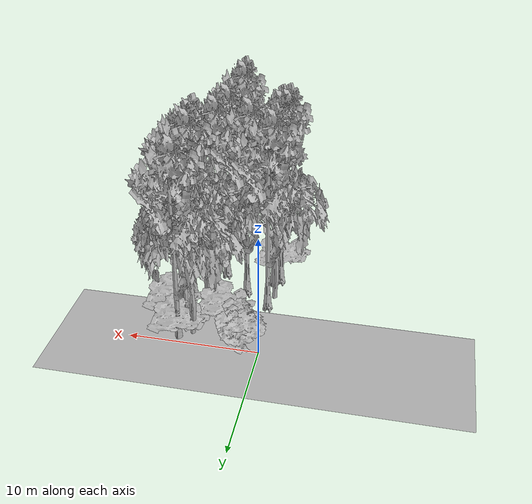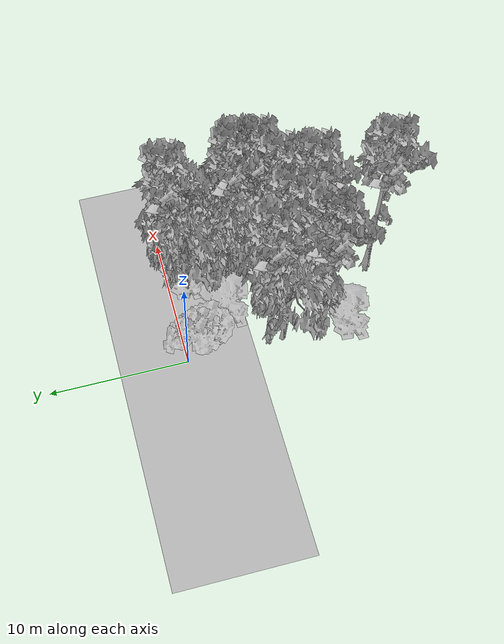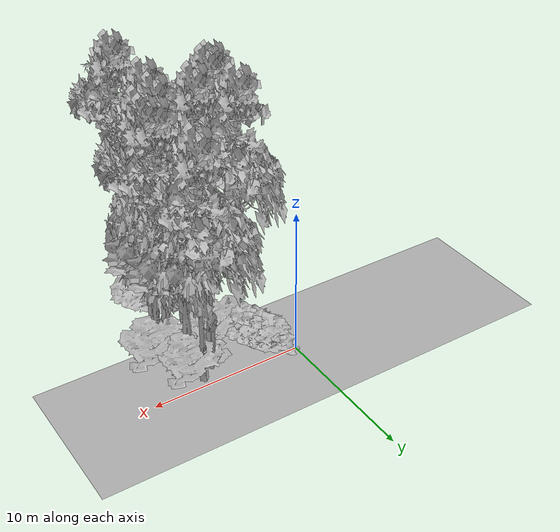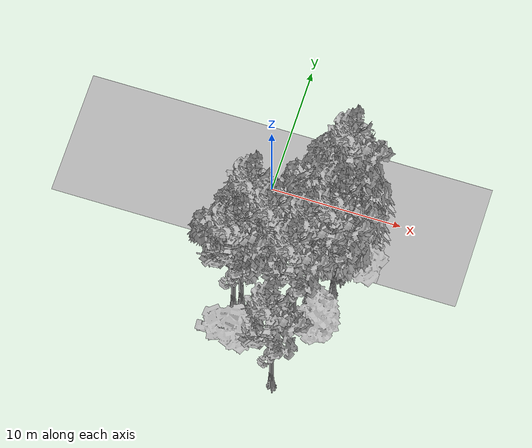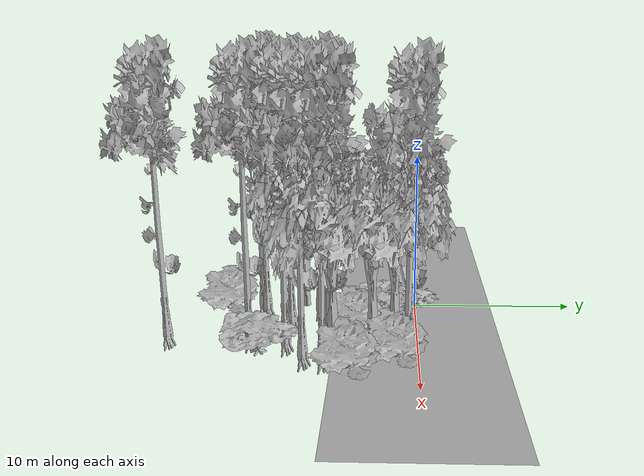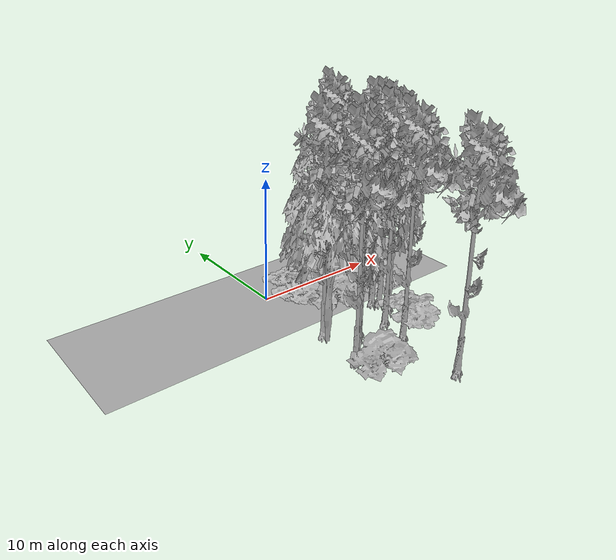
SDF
<sdf version="1.7">
 <world name="default">
  <model name="ground_plane">
   <static>1</static>
   <link name="link">
    <collision name="collision">
     <pose>-50 0 0 0 -0 0</pose>
     <geometry><plane><normal>0 0 1</normal><size>100 100</size></plane></geometry>
     <surface><contact><ode><min_depth>0.01</min_depth><max_vel>0</max_vel></ode></contact></surface>
    </collision>
    <visual name="grass">
     <cast_shadows>0</cast_shadows>
     <geometry>
      <mesh>
       <scale>0.5814285714285714 0.18142857142857144 0.1</scale>
       <uri>file://grass_plane/meshes/grass_plane.dae</uri>
      </mesh>
     </geometry>
    </visual>
   </link>
  </model>
  <model name="Tree 47">
   <static>1</static>
   <pose>5.1906267284999 -7.704405802500441 0 1.57079 -0 0</pose>
   <link name="link">
    <collision name="collision">
     <geometry><mesh><scale>3.5 5 3.5</scale><uri>model://tree_9/meshes/tree_9.obj</uri></mesh></geometry>
    </collision>
    <visual name="visual">
     <geometry><mesh><scale>3.5 5 3.5</scale><uri>model://tree_9/meshes/tree_9.obj</uri></mesh></geometry>
    </visual>
   </link>
  </model>
  <model name="Tree 98">
   <static>1</static>
   <pose>0.6595280109335704 -9.530584026053392 0 1.57079 -0 0</pose>
   <link name="link">
    <collision name="collision">
     <geometry><mesh><scale>3.5 5 3.5</scale><uri>model://tree_9/meshes/tree_9.obj</uri></mesh></geometry>
    </collision>
    <visual name="visual">
     <geometry><mesh><scale>3.5 5 3.5</scale><uri>model://tree_9/meshes/tree_9.obj</uri></mesh></geometry>
    </visual>
   </link>
  </model>
  <model name="Tree 135">
   <static>1</static>
   <pose>6.2471451750112905 -2.5941195589769865 0 1.57079 -0 0</pose>
   <link name="link">
    <collision name="collision">
     <geometry><mesh><scale>3.5 5 3.5</scale><uri>model://tree_2/meshes/tree_2.obj</uri></mesh></geometry>
    </collision>
    <visual name="visual">
     <geometry><mesh><scale>3.5 5 3.5</scale><uri>model://tree_2/meshes/tree_2.obj</uri></mesh></geometry>
    </visual>
   </link>
  </model>
  <model name="Tree 149">
   <static>1</static>
   <pose>1.4003544358813187 -1.0114500751503481 0 1.57079 -0 0</pose>
   <link name="link">
    <collision name="collision">
     <geometry><mesh><scale>4 2.5 4</scale><uri>model://tree_1/meshes/tree_1.obj</uri></mesh></geometry>
    </collision>
    <visual name="visual">
     <geometry><mesh><scale>4 2.5 4</scale><uri>model://tree_1/meshes/tree_1.obj</uri></mesh></geometry>
    </visual>
   </link>
  </model>
  <model name="Tree 172">
   <static>1</static>
   <pose>6.5687089896866055 -1.62217858796296 0 1.57079 -0 0</pose>
   <link name="link">
    <collision name="collision">
     <geometry><mesh><scale>3 2 3</scale><uri>model://tree_3/meshes/tree_3.obj</uri></mesh></geometry>
    </collision>
    <visual name="visual">
     <geometry><mesh><scale>3 2 3</scale><uri>model://tree_3/meshes/tree_3.obj</uri></mesh></geometry>
    </visual>
   </link>
  </model>
  <model name="Tree 184">
   <static>1</static>
   <pose>6.768180602157841 -6.5285065411665855 0 1.57079 -0 0</pose>
   <link name="link">
    <collision name="collision">
     <geometry><mesh><scale>3.5 5 3.5</scale><uri>model://tree_9/meshes/tree_9.obj</uri></mesh></geometry>
    </collision>
    <visual name="visual">
     <geometry><mesh><scale>3.5 5 3.5</scale><uri>model://tree_9/meshes/tree_9.obj</uri></mesh></geometry>
    </visual>
   </link>
  </model>
  <model name="Tree 193">
   <static>1</static>
   <pose>0.5421023043805988 -6.1133744101644325 0 1.57079 -0 0</pose>
   <link name="link">
    <collision name="collision">
     <geometry><mesh><scale>3.5 5 3.5</scale><uri>model://tree_9/meshes/tree_9.obj</uri></mesh></geometry>
    </collision>
    <visual name="visual">
     <geometry><mesh><scale>3.5 5 3.5</scale><uri>model://tree_9/meshes/tree_9.obj</uri></mesh></geometry>
    </visual>
   </link>
  </model>
  <model name="Tree 213">
   <static>1</static>
   <pose>4.777678196851902 -9.896130131199058 0 1.57079 -0 0</pose>
   <link name="link">
    <collision name="collision">
     <geometry><mesh><scale>3.5 5 3.5</scale><uri>model://tree_9/meshes/tree_9.obj</uri></mesh></geometry>
    </collision>
    <visual name="visual">
     <geometry><mesh><scale>3.5 5 3.5</scale><uri>model://tree_9/meshes/tree_9.obj</uri></mesh></geometry>
    </visual>
   </link>
  </model>
  <model name="Tree 216">
   <static>1</static>
   <pose>4.64163036588802 -14.832763353882394 0 1.57079 -0 0</pose>
   <link name="link">
    <collision name="collision">
     <geometry><mesh><scale>3.5 5 3.5</scale><uri>model://tree_9/meshes/tree_9.obj</uri></mesh></geometry>
    </collision>
    <visual name="visual">
     <geometry><mesh><scale>3.5 5 3.5</scale><uri>model://tree_9/meshes/tree_9.obj</uri></mesh></geometry>
    </visual>
   </link>
  </model>
  <model name="Tree 223">
   <static>1</static>
   <pose>6.546876435456284 -4.986735942061159 0 1.57079 -0 0</pose>
   <link name="link">
    <collision name="collision">
     <geometry><mesh><scale>3.5 5 3.5</scale><uri>model://tree_9/meshes/tree_9.obj</uri></mesh></geometry>
    </collision>
    <visual name="visual">
     <geometry><mesh><scale>3.5 5 3.5</scale><uri>model://tree_9/meshes/tree_9.obj</uri></mesh></geometry>
    </visual>
   </link>
  </model>
  <model name="Tree 257">
   <static>1</static>
   <pose>0.4492926558976791 -12.109331527161592 0 1.57079 -0 0</pose>
   <link name="link">
    <collision name="collision">
     <geometry><mesh><scale>3 2 3</scale><uri>model://tree_3/meshes/tree_3.obj</uri></mesh></geometry>
    </collision>
    <visual name="visual">
     <geometry><mesh><scale>3 2 3</scale><uri>model://tree_3/meshes/tree_3.obj</uri></mesh></geometry>
    </visual>
   </link>
  </model>
  <model name="Tree 319">
   <static>1</static>
   <pose>5.149410494980835 -5.141643056125069 0 1.57079 -0 0</pose>
   <link name="link">
    <collision name="collision">
     <geometry><mesh><scale>3.5 5 3.5</scale><uri>model://tree_2/meshes/tree_2.obj</uri></mesh></geometry>
    </collision>
    <visual name="visual">
     <geometry><mesh><scale>3.5 5 3.5</scale><uri>model://tree_2/meshes/tree_2.obj</uri></mesh></geometry>
    </visual>
   </link>
  </model>
  <model name="Tree 324">
   <static>1</static>
   <pose>0.0409320439127967 -7.053191806178133 0 1.57079 -0 0</pose>
   <link name="link">
    <collision name="collision">
     <geometry><mesh><scale>3.5 5 3.5</scale><uri>model://tree_2/meshes/tree_2.obj</uri></mesh></geometry>
    </collision>
    <visual name="visual">
     <geometry><mesh><scale>3.5 5 3.5</scale><uri>model://tree_2/meshes/tree_2.obj</uri></mesh></geometry>
    </visual>
   </link>
  </model>
  <model name="Tree 333">
   <static>1</static>
   <pose>6.3113043749798265 -0.6092743516838741 0 1.57079 -0 0</pose>
   <link name="link">
    <collision name="collision">
     <geometry><mesh><scale>3.5 5 3.5</scale><uri>model://tree_9/meshes/tree_9.obj</uri></mesh></geometry>
    </collision>
    <visual name="visual">
     <geometry><mesh><scale>3.5 5 3.5</scale><uri>model://tree_9/meshes/tree_9.obj</uri></mesh></geometry>
    </visual>
   </link>
  </model>
  <model name="Tree 473">
   <static>1</static>
   <pose>2.5713027298717677 -7.693798580085628 0 1.57079 -0 0</pose>
   <link name="link">
    <collision name="collision">
     <geometry><mesh><scale>3.5 5 3.5</scale><uri>model://tree_9/meshes/tree_9.obj</uri></mesh></geometry>
    </collision>
    <visual name="visual">
     <geometry><mesh><scale>3.5 5 3.5</scale><uri>model://tree_9/meshes/tree_9.obj</uri></mesh></geometry>
    </visual>
   </link>
  </model>
  <model name="Tree 474">
   <static>1</static>
   <pose>5.278443409667318 -1.3570630235511185 0 1.57079 -0 0</pose>
   <link name="link">
    <collision name="collision">
     <geometry><mesh><scale>3.5 5 3.5</scale><uri>model://tree_2/meshes/tree_2.obj</uri></mesh></geometry>
    </collision>
    <visual name="visual">
     <geometry><mesh><scale>3.5 5 3.5</scale><uri>model://tree_2/meshes/tree_2.obj</uri></mesh></geometry>
    </visual>
   </link>
  </model>
  <model name="Tree 482">
   <static>1</static>
   <pose>6.534772256496694 -4.801950092958281 0 1.57079 -0 0</pose>
   <link name="link">
    <collision name="collision">
     <geometry><mesh><scale>3.5 5 3.5</scale><uri>model://tree_2/meshes/tree_2.obj</uri></mesh></geometry>
    </collision>
    <visual name="visual">
     <geometry><mesh><scale>3.5 5 3.5</scale><uri>model://tree_2/meshes/tree_2.obj</uri></mesh></geometry>
    </visual>
   </link>
  </model>
  <model name="Tree 490">
   <static>1</static>
   <pose>3.5674089449627004 -4.041760342303233 0 1.57079 -0 0</pose>
   <link name="link">
    <collision name="collision">
     <geometry><mesh><scale>3 2 3</scale><uri>model://tree_3/meshes/tree_3.obj</uri></mesh></geometry>
    </collision>
    <visual name="visual">
     <geometry><mesh><scale>3 2 3</scale><uri>model://tree_3/meshes/tree_3.obj</uri></mesh></geometry>
    </visual>
   </link>
  </model>
  <model name="Tree 495">
   <static>1</static>
   <pose>1.7961174442017978 -1.7751588265555576 0 1.57079 -0 0</pose>
   <link name="link">
    <collision name="collision">
     <geometry><mesh><scale>4 2.5 4</scale><uri>model://tree_1/meshes/tree_1.obj</uri></mesh></geometry>
    </collision>
    <visual name="visual">
     <geometry><mesh><scale>4 2.5 4</scale><uri>model://tree_1/meshes/tree_1.obj</uri></mesh></geometry>
    </visual>
   </link>
  </model>
  <model name="Tree 499">
   <static>1</static>
   <pose>6.98217468205673 -5.377871033211768 0 1.57079 -0 0</pose>
   <link name="link">
    <collision name="collision">
     <geometry><mesh><scale>3.5 5 3.5</scale><uri>model://tree_9/meshes/tree_9.obj</uri></mesh></geometry>
    </collision>
    <visual name="visual">
     <geometry><mesh><scale>3.5 5 3.5</scale><uri>model://tree_9/meshes/tree_9.obj</uri></mesh></geometry>
    </visual>
   </link>
  </model>
  <model name="Tree 508">
   <static>1</static>
   <pose>0.16574143953488374 -9.871979133906017 0 1.57079 -0 0</pose>
   <link name="link">
    <collision name="collision">
     <geometry><mesh><scale>3.5 5 3.5</scale><uri>model://tree_9/meshes/tree_9.obj</uri></mesh></geometry>
    </collision>
    <visual name="visual">
     <geometry><mesh><scale>3.5 5 3.5</scale><uri>model://tree_9/meshes/tree_9.obj</uri></mesh></geometry>
    </visual>
   </link>
  </model>
  <model name="Tree 515">
   <static>1</static>
   <pose>7.809978805426532 -4.234955430061577 0 1.57079 -0 0</pose>
   <link name="link">
    <collision name="collision">
     <geometry><mesh><scale>3 2 3</scale><uri>model://tree_3/meshes/tree_3.obj</uri></mesh></geometry>
    </collision>
    <visual name="visual">
     <geometry><mesh><scale>3 2 3</scale><uri>model://tree_3/meshes/tree_3.obj</uri></mesh></geometry>
    </visual>
   </link>
  </model>
  <model name="Tree 532">
   <static>1</static>
   <pose>6.132852439598551 -9.161929613608596 0 1.57079 -0 0</pose>
   <link name="link">
    <collision name="collision">
     <geometry><mesh><scale>4 2.5 4</scale><uri>model://tree_1/meshes/tree_1.obj</uri></mesh></geometry>
    </collision>
    <visual name="visual">
     <geometry><mesh><scale>4 2.5 4</scale><uri>model://tree_1/meshes/tree_1.obj</uri></mesh></geometry>
    </visual>
   </link>
  </model>
 </world>
</sdf>
